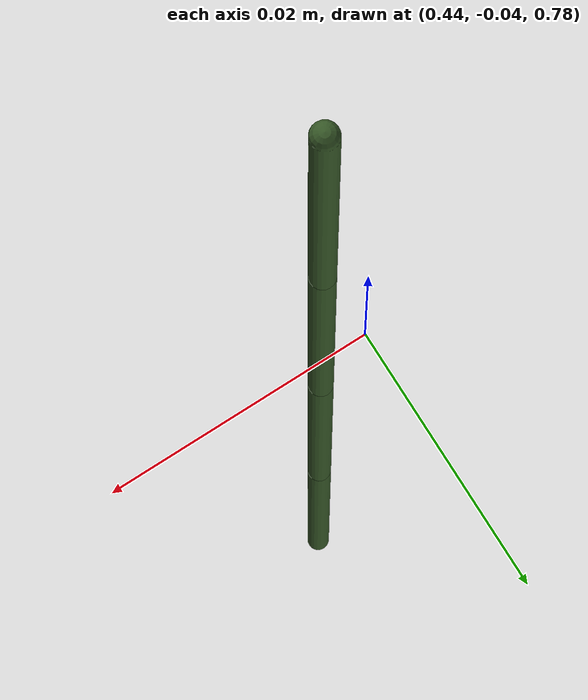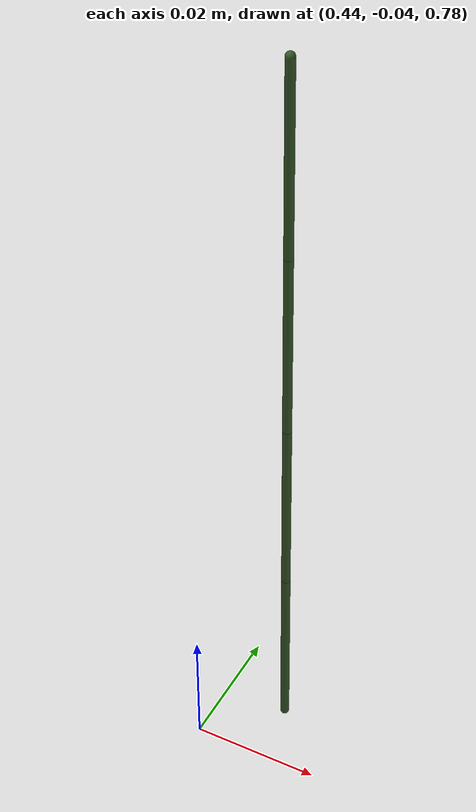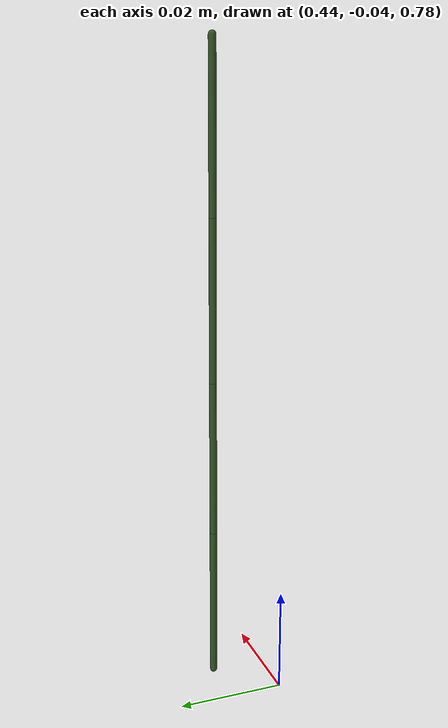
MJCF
<mujoco model="strawb_vine">
  <compiler angle="radian" meshdir="assets."/>

  <asset>
    <!-- … unchanged … -->
  </asset>

  <worldbody>
    <body name="vine1" pos="0.45 -0.03 0.9" quat="0.707388 0 0.706825 0">

      <body name="aB_first">
        <!-- ⬇️ aJ_first : ball → 3 hinges -->
        <joint name="aJ_first_rx" pos="0 0 0" type="hinge" axis="1 0 0"
               group="3" actuatorfrclimited="false" damping="0.001"/>
        <joint name="aJ_first_ry" pos="0 0 0" type="hinge" axis="0 1 0"
               group="3" actuatorfrclimited="false" damping="0.001"/>
        <joint name="aJ_first_rz" pos="0 0 0" type="hinge" axis="0 0 1"
               group="3" actuatorfrclimited="false" damping="0.001"/>

        <geom name="aG0" size="0.0007 0.015" pos="0.015 0 0"
              quat="0.707107 0 -0.707107 0" type="capsule"
              solref="0.01 0.1" mass="0.0001" rgba="0.208 0.337 0.149 1"/>
        <site name="aS_first" pos="0 0 0" group="3"/>

        <body name="aB_1" pos="0.03 0 0">
          <!-- ⬇️ aJ_1 : ball → 3 hinges -->
          <joint name="aJ_1_rx" pos="0 0 0" type="hinge" axis="1 0 0"
                 group="3" actuatorfrclimited="false" damping="0.001"/>
          <joint name="aJ_1_ry" pos="0 0 0" type="hinge" axis="0 1 0"
                 group="3" actuatorfrclimited="false" damping="0.001"/>
          <joint name="aJ_1_rz" pos="0 0 0" type="hinge" axis="0 0 1"
                 group="3" actuatorfrclimited="false" damping="0.001"/>

          <geom name="aG1" size="0.0007 0.015" pos="0.015 0 0"
                quat="0.707107 0 -0.707107 0" type="capsule"
                solref="0.01 0.1" mass="0.0001" rgba="0.208 0.337 0.149 1"/>

          <body name="aB_2" pos="0.03 0 0">
            <!-- ⬇️ aJ_2 : ball → 3 hinges -->
            <joint name="aJ_2_rx" pos="0 0 0" type="hinge" axis="1 0 0"
                   group="3" actuatorfrclimited="false" damping="0.001"/>
            <joint name="aJ_2_ry" pos="0 0 0" type="hinge" axis="0 1 0"
                   group="3" actuatorfrclimited="false" damping="0.001"/>
            <joint name="aJ_2_rz" pos="0 0 0" type="hinge" axis="0 0 1"
                   group="3" actuatorfrclimited="false" damping="0.001"/>

            <geom name="aG2" size="0.0007 0.015" pos="0.015 0 0"
                  quat="0.707107 0 -0.707107 0" type="capsule"
                  solref="0.01 0.1" mass="0.0001" rgba="0.208 0.337 0.149 1"/>

            <body name="aB_last" pos="0.03 0 0">
              <!-- ⬇️ aJ_last : ball → 3 hinges -->
              <joint name="aJ_last_rx" pos="0 0 0" type="hinge" axis="1 0 0"
                     group="3" actuatorfrclimited="false" damping="0.001"/>
              <joint name="aJ_last_ry" pos="0 0 0" type="hinge" axis="0 1 0"
                     group="3" actuatorfrclimited="false" damping="0.001"/>
              <joint name="aJ_last_rz" pos="0 0 0" type="hinge" axis="0 0 1"
                     group="3" actuatorfrclimited="false" damping="0.001"/>

              <geom name="aG3" size="0.0007 0.015" pos="0.015 0 0"
                    quat="0.707107 0 -0.707107 0" type="capsule"
                    solref="0.01 0.1" mass="0.0001" rgba="0.208 0.337 0.149 1"/>
              <site name="aS_last" pos="0.03 0 0" group="3"/>

              <!-- … the rest of your vine / strawberry geometry … -->
            </body>
          </body>
        </body>
      </body>
    </body>
  </worldbody>
</mujoco>
